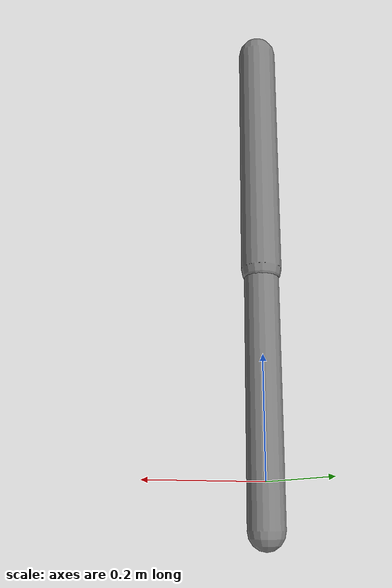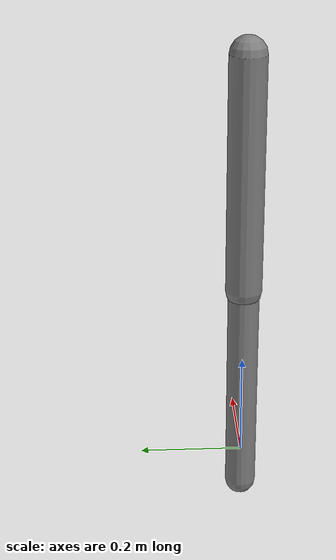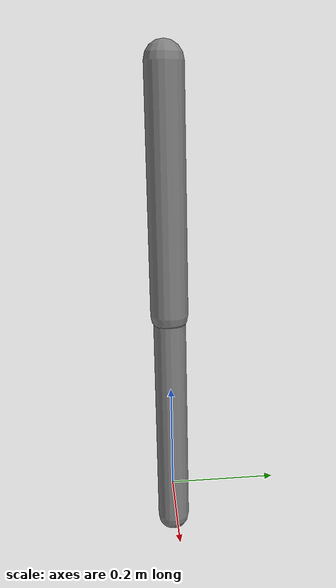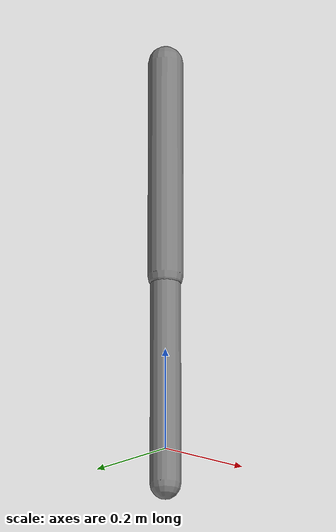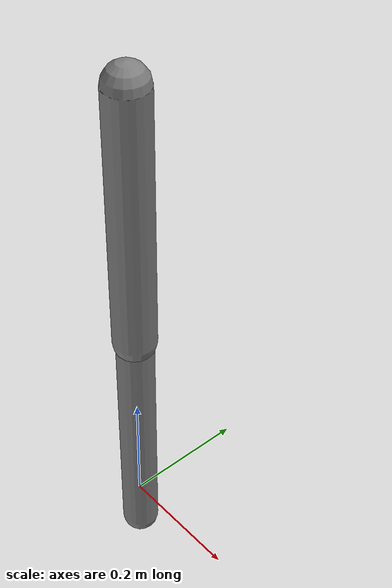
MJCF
<mujoco model="double_pendulum_energy">
  <option timestep="0.01" gravity="0 0 -9.81"/>
  <worldbody>
    <body name="link1" pos="0 0 0.8">
      <joint name="shoulder" type="hinge" axis="0 1 0" damping="0.08"/>
      <geom name="link1_geom" type="capsule" fromto="0 0 0 0 0 -0.45" size="0.035" mass="1.2"/>
      <body name="link2" pos="0 0 -0.45">
        <joint name="elbow" type="hinge" axis="0 1 0" damping="0.06"/>
        <geom name="link2_geom" type="capsule" fromto="0 0 0 0 0 -0.42" size="0.03" mass="0.8"/>
      </body>
    </body>
  </worldbody>
  <actuator>
    <motor name="shoulder_motor" joint="shoulder" gear="1.2"/>
    <motor name="elbow_motor" joint="elbow" gear="0.9"/>
  </actuator>
</mujoco>
